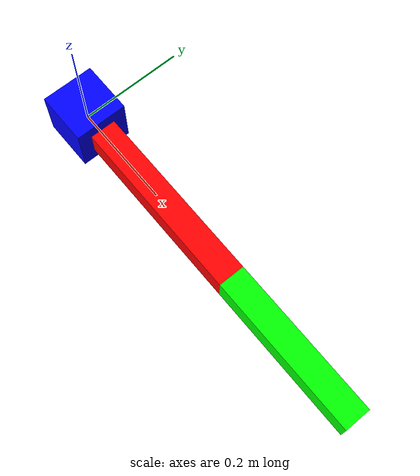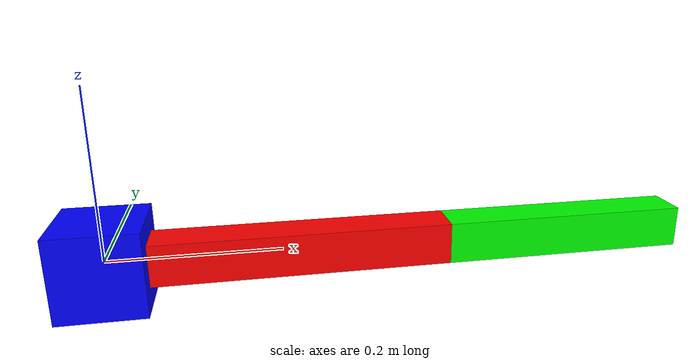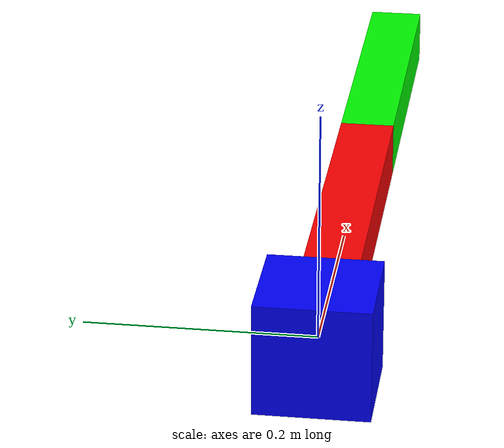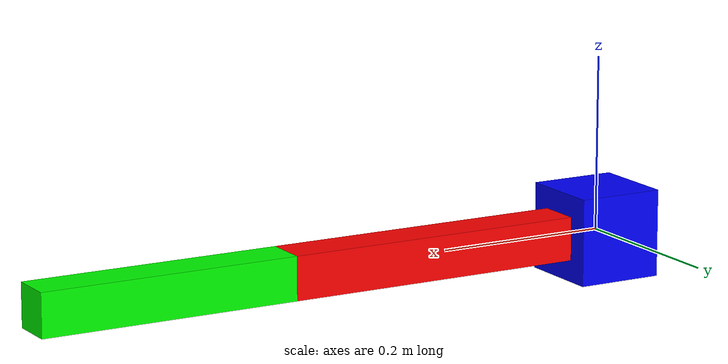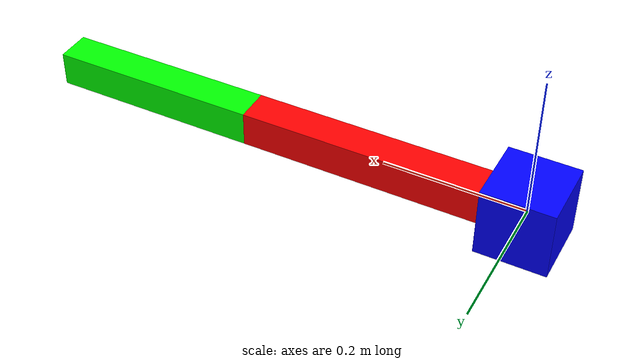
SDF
<?xml version="1.0" ?>
<sdf version="1.6">
<model name="two_links">
  <static>false</static>

  <link name="base_link">
    <pose>0 0 0 0 0 0</pose>
    <inertial>
      <mass>10.0</mass>
      <inertia>
        <ixx>0.1</ixx>
        <iyy>0.1</iyy>
        <izz>0.1</izz>
      </inertia>
    </inertial>
    <visual name="visual">
      <geometry>
        <box><size>0.1 0.1 0.1</size></box>
      </geometry>
      <material>
        <ambient>0 0 1 1</ambient>
        <diffuse>0 0 1 1</diffuse>
      </material>
    </visual>
  </link>

  <link name="link1">
    <pose>0 0 0 0 0 0</pose>
    <inertial>
      <mass>0.5</mass>
      <inertia>
        <ixx>0.01</ixx>
        <iyy>0.01</iyy>
        <izz>0.01</izz>
      </inertia>
    </inertial>
    <collision name="collision">
      <geometry>
        <box><size>0.4 0.05 0.05</size></box>
      </geometry>
      <pose>0.2 0 0 0 0 0</pose>
    </collision>
    <visual name="visual">
      <geometry>
        <box><size>0.4 0.05 0.05</size></box>
      </geometry>
      <pose>0.2 0 0 0 0 0</pose>
      <material>
        <ambient>1 0 0 1</ambient>
        <diffuse>1 0 0 1</diffuse>
      </material>
    </visual>
  </link>

  <link name="link2">
    <pose>0.4 0 0 0 0 0</pose>
    <inertial>
      <mass>0.3</mass>
      <inertia>
        <ixx>0.01</ixx>
        <iyy>0.01</iyy>
        <izz>0.01</izz>
      </inertia>
    </inertial>
    <collision name="collision">
      <geometry>
        <box><size>0.3 0.05 0.05</size></box>
      </geometry>
      <pose>0.15 0 0 0 0 0</pose>
    </collision>
    <visual name="visual">
      <geometry>
        <box><size>0.3 0.05 0.05</size></box>
      </geometry>
      <pose>0.15 0 0 0 0 0</pose>
      <material>
        <ambient>0 1 0 1</ambient>
        <diffuse>0 1 0 1</diffuse>
      </material>
    </visual>
  </link>

  <joint name="joint1" type="revolute">
    <parent>base_link</parent>
    <child>link1</child>
    <pose>0 0 0.05 0 0 0</pose>
    <axis>
      <xyz>0 0 1</xyz>
      <limit>
        <lower>-1.57</lower>
        <upper>1.57</upper>
        <effort>10</effort>
        <velocity>1.0</velocity>
      </limit>
    </axis>
  </joint>

  <joint name="joint2" type="revolute">
    <parent>link1</parent>
    <child>link2</child>
    <axis>
      <xyz>0 0 1</xyz>
      <limit>
        <lower>-1.57</lower>
        <upper>1.57</upper>
        <effort>10</effort>
        <velocity>1.0</velocity>
      </limit>
    </axis>
  </joint>

  <!-- The following plug-in publishes the joint states for joint1 and joint2 via the ROS topic /joint_states-->
  <plugin name="joint_state_publisher" filename="libgazebo_ros_joint_state_publisher.so">
    <ros>
      <namespace>/</namespace>
      <remapping>joint_states:=/joint_states</remapping>
    </ros>
    <update_rate>50.0</update_rate>
    <joint_name>joint1</joint_name>
    <joint_name>joint2</joint_name>
  </plugin>

</model>
</sdf>
